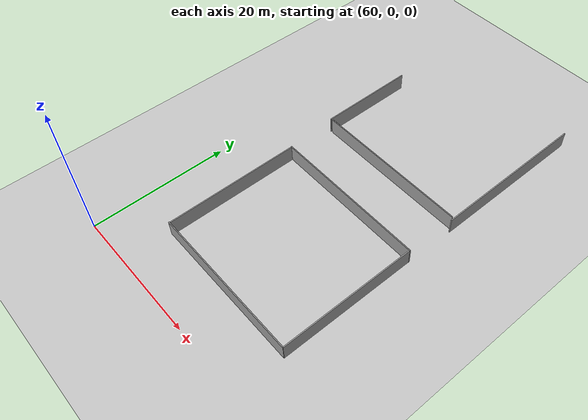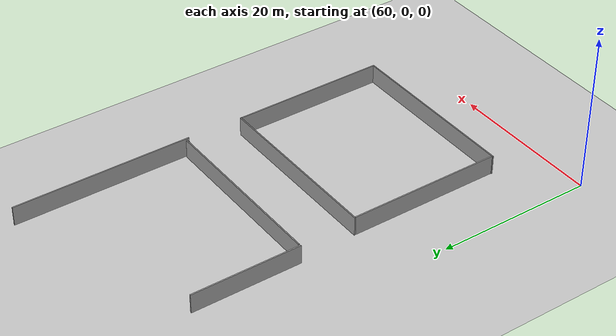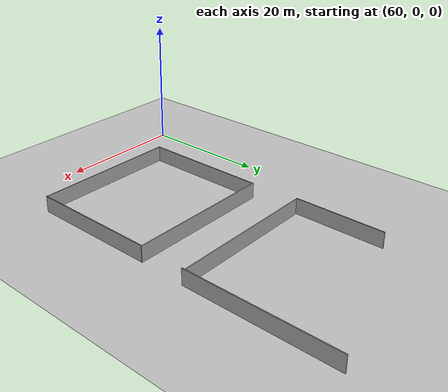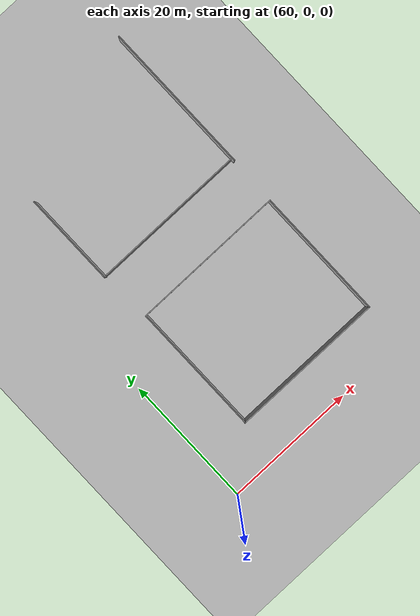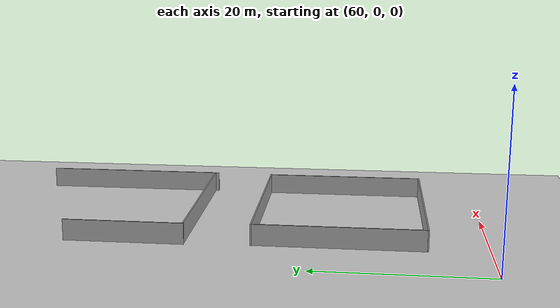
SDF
<sdf version="1.6">
 <world name="default">
  <model name="ground_plane">
   <static>1</static>
   <link name="link">
    <collision name="collision">
     <geometry><plane><normal>0 0 1</normal><size>100 100</size></plane></geometry>
     <surface>
      <contact><collide_bitmask>65535</collide_bitmask></contact>
      <friction><ode><mu>100</mu><mu2>50</mu2></ode></friction>
     </surface>
    </collision>
    <visual name="visual">
     <cast_shadows>0</cast_shadows>
     <geometry><plane><normal>0 0 1</normal><size>100 100</size></plane></geometry>
     <material>
      <script><uri>file://media/materials/scripts/gazebo.material</uri><name>Gazebo/Grey</name></script>
     </material>
    </visual>
   </link>
  </model>
  <model name="en_uzun_duvar2_clone_1_clone_clone_clone_7">
   <link name="Wall_2">
    <pose>10.2656 7.53235 0 0 -0 0</pose>
    <inertial>
     <inertia><ixx>0</ixx><ixy>0</ixy><ixz>0</ixz><iyy>0</iyy><iyz>0</iyz><izz>0</izz></inertia>
     <mass>0</mass>
    </inertial>
    <visual name="Wall_2_Visual">
     <pose>0 0 1.25 0 -0 0</pose>
     <geometry><box><size>19.779 0.15 2.5</size></box></geometry>
     <material>
      <script><uri>file://media/materials/scripts/gazebo.material</uri><name>Gazebo/Grey</name></script>
      <ambient>1 1 1 1</ambient>
     </material>
     <meta><layer>0</layer></meta>
    </visual>
    <collision name="Wall_2_Collision">
     <pose>0 0 1.25 0 -0 0</pose>
     <geometry><box><size>19.779 0.15 2.5</size></box></geometry>
     <surface>
      <friction>
       <ode><mu>1</mu><mu2>1</mu2><fdir1>0 0 0</fdir1><slip1>0</slip1><slip2>0</slip2></ode>
       <torsional>
        <coefficient>1</coefficient>
        <patch_radius>0</patch_radius>
        <surface_radius>0</surface_radius>
        <use_patch_radius>1</use_patch_radius>
        <ode><slip>0</slip></ode>
       </torsional>
      </friction>
      <bounce><restitution_coefficient>0</restitution_coefficient><threshold>1e+06</threshold></bounce>
      <contact>
       <collide_without_contact>0</collide_without_contact>
       <collide_without_contact_bitmask>1</collide_without_contact_bitmask>
       <collide_bitmask>1</collide_bitmask>
       <ode>
        <soft_cfm>0</soft_cfm>
        <soft_erp>0.2</soft_erp>
        <kp>1e+13</kp>
        <kd>1</kd>
        <max_vel>0.01</max_vel>
        <min_depth>0</min_depth>
       </ode>
       <bullet>
        <split_impulse>1</split_impulse>
        <split_impulse_penetration_threshold>-0.01</split_impulse_penetration_threshold>
        <soft_cfm>0</soft_cfm>
        <soft_erp>0.2</soft_erp>
        <kp>1e+13</kp>
        <kd>1</kd>
       </bullet>
      </contact>
     </surface>
    </collision>
   </link>
   <static>1</static>
   <pose>75.3393 6.51621 0 0 -0 1.57059</pose>
  </model>
  <model name="en_uzun_duvar2_clone_1_clone_clone_clone_9">
   <link name="Wall_2">
    <pose>10.2656 7.53235 0 0 -0 0</pose>
    <inertial>
     <inertia><ixx>0</ixx><ixy>0</ixy><ixz>0</ixz><iyy>0</iyy><iyz>0</iyz><izz>0</izz></inertia>
     <mass>0</mass>
    </inertial>
    <visual name="Wall_2_Visual">
     <pose>0 0 1.25 0 -0 0</pose>
     <geometry><box><size>19.779 0.15 2.5</size></box></geometry>
     <material>
      <script><uri>file://media/materials/scripts/gazebo.material</uri><name>Gazebo/Grey</name></script>
      <ambient>1 1 1 1</ambient>
     </material>
     <meta><layer>0</layer></meta>
    </visual>
    <collision name="Wall_2_Collision">
     <pose>0 0 1.25 0 -0 0</pose>
     <geometry><box><size>19.779 0.15 2.5</size></box></geometry>
     <surface>
      <friction>
       <ode><mu>1</mu><mu2>1</mu2><fdir1>0 0 0</fdir1><slip1>0</slip1><slip2>0</slip2></ode>
       <torsional>
        <coefficient>1</coefficient>
        <patch_radius>0</patch_radius>
        <surface_radius>0</surface_radius>
        <use_patch_radius>1</use_patch_radius>
        <ode><slip>0</slip></ode>
       </torsional>
      </friction>
      <bounce><restitution_coefficient>0</restitution_coefficient><threshold>1e+06</threshold></bounce>
      <contact>
       <collide_without_contact>0</collide_without_contact>
       <collide_without_contact_bitmask>1</collide_without_contact_bitmask>
       <collide_bitmask>1</collide_bitmask>
       <ode>
        <soft_cfm>0</soft_cfm>
        <soft_erp>0.2</soft_erp>
        <kp>1e+13</kp>
        <kd>1</kd>
        <max_vel>0.01</max_vel>
        <min_depth>0</min_depth>
       </ode>
       <bullet>
        <split_impulse>1</split_impulse>
        <split_impulse_penetration_threshold>-0.01</split_impulse_penetration_threshold>
        <soft_cfm>0</soft_cfm>
        <soft_erp>0.2</soft_erp>
        <kp>1e+13</kp>
        <kd>1</kd>
       </bullet>
      </contact>
     </surface>
    </collision>
   </link>
   <static>1</static>
   <pose>98.3279 6.51977 0 0 -0 1.57059</pose>
  </model>
  <model name="en_uzun_duvar2_clone_1_clone_clone_clone_10_clone_1">
   <link name="Wall_2">
    <pose>10.2656 7.53235 0 0 -0 0</pose>
    <inertial>
     <inertia><ixx>0</ixx><ixy>0</ixy><ixz>0</ixz><iyy>0</iyy><iyz>0</iyz><izz>0</izz></inertia>
     <mass>0</mass>
    </inertial>
    <visual name="Wall_2_Visual">
     <pose>0 0 1.25 0 -0 0</pose>
     <geometry><box><size>23.1013 0.15 2.5</size></box></geometry>
     <material>
      <script><uri>file://media/materials/scripts/gazebo.material</uri><name>Gazebo/Grey</name></script>
      <ambient>1 1 1 1</ambient>
     </material>
     <meta><layer>0</layer></meta>
    </visual>
    <collision name="Wall_2_Collision">
     <pose>0 0 1.25 0 -0 0</pose>
     <geometry><box><size>23.1013 0.15 2.5</size></box></geometry>
     <surface>
      <friction>
       <ode><mu>1</mu><mu2>1</mu2><fdir1>0 0 0</fdir1><slip1>0</slip1><slip2>0</slip2></ode>
       <torsional>
        <coefficient>1</coefficient>
        <patch_radius>0</patch_radius>
        <surface_radius>0</surface_radius>
        <use_patch_radius>1</use_patch_radius>
        <ode><slip>0</slip></ode>
       </torsional>
      </friction>
      <bounce><restitution_coefficient>0</restitution_coefficient><threshold>1e+06</threshold></bounce>
      <contact>
       <collide_without_contact>0</collide_without_contact>
       <collide_without_contact_bitmask>1</collide_without_contact_bitmask>
       <collide_bitmask>1</collide_bitmask>
       <ode>
        <soft_cfm>0</soft_cfm>
        <soft_erp>0.2</soft_erp>
        <kp>1e+13</kp>
        <kd>1</kd>
        <max_vel>0.01</max_vel>
        <min_depth>0</min_depth>
       </ode>
       <bullet>
        <split_impulse>1</split_impulse>
        <split_impulse_penetration_threshold>-0.01</split_impulse_penetration_threshold>
        <soft_cfm>0</soft_cfm>
        <soft_erp>0.2</soft_erp>
        <kp>1e+13</kp>
        <kd>1</kd>
       </bullet>
      </contact>
     </surface>
    </collision>
   </link>
   <static>1</static>
   <pose>98.5301 35.2119 0 0 -0 1.57059</pose>
  </model>
  <model name="en_uzun_duvar2_clone_1_clone_clone_clone_10_clone_3_clone_0">
   <link name="Wall_2">
    <pose>10.2656 7.53235 0 0 -0 0</pose>
    <inertial>
     <inertia><ixx>0</ixx><ixy>0</ixy><ixz>0</ixz><iyy>0</iyy><iyz>0</iyz><izz>0</izz></inertia>
     <mass>0</mass>
    </inertial>
    <visual name="Wall_2_Visual">
     <pose>0 0 1.25 0 -0 0</pose>
     <geometry><box><size>14.1147 0.15 2.5</size></box></geometry>
     <material>
      <script><uri>file://media/materials/scripts/gazebo.material</uri><name>Gazebo/Grey</name></script>
      <ambient>1 1 1 1</ambient>
     </material>
     <meta><layer>0</layer></meta>
    </visual>
    <collision name="Wall_2_Collision">
     <pose>0 0 1.25 0 -0 0</pose>
     <geometry><box><size>14.1147 0.15 2.5</size></box></geometry>
     <surface>
      <friction>
       <ode><mu>1</mu><mu2>1</mu2><fdir1>0 0 0</fdir1><slip1>0</slip1><slip2>0</slip2></ode>
       <torsional>
        <coefficient>1</coefficient>
        <patch_radius>0</patch_radius>
        <surface_radius>0</surface_radius>
        <use_patch_radius>1</use_patch_radius>
        <ode><slip>0</slip></ode>
       </torsional>
      </friction>
      <bounce><restitution_coefficient>0</restitution_coefficient><threshold>1e+06</threshold></bounce>
      <contact>
       <collide_without_contact>0</collide_without_contact>
       <collide_without_contact_bitmask>1</collide_without_contact_bitmask>
       <collide_bitmask>1</collide_bitmask>
       <ode>
        <soft_cfm>0</soft_cfm>
        <soft_erp>0.2</soft_erp>
        <kp>1e+13</kp>
        <kd>1</kd>
        <max_vel>0.01</max_vel>
        <min_depth>0</min_depth>
       </ode>
       <bullet>
        <split_impulse>1</split_impulse>
        <split_impulse_penetration_threshold>-0.01</split_impulse_penetration_threshold>
        <soft_cfm>0</soft_cfm>
        <soft_erp>0.2</soft_erp>
        <kp>1e+13</kp>
        <kd>1</kd>
       </bullet>
      </contact>
     </surface>
    </collision>
   </link>
   <static>1</static>
   <pose>74.8187 31.1317 0 0 -0 1.57059</pose>
  </model>
  <model name="en_uzun_duvar2_clone_1_clone_clone_clone_4_clone_0">
   <link name="Wall_2">
    <pose>10.2656 7.53235 0 0 -0 0</pose>
    <inertial>
     <inertia><ixx>0</ixx><ixy>0</ixy><ixz>0</ixz><iyy>0</iyy><iyz>0</iyz><izz>0</izz></inertia>
     <mass>0</mass>
    </inertial>
    <visual name="Wall_2_Visual">
     <pose>0 0 1.25 0 -0 0</pose>
     <geometry><box><size>23.1907 0.15 2.5</size></box></geometry>
     <material>
      <script><uri>file://media/materials/scripts/gazebo.material</uri><name>Gazebo/Grey</name></script>
      <ambient>1 1 1 1</ambient>
     </material>
     <meta><layer>0</layer></meta>
    </visual>
    <collision name="Wall_2_Collision">
     <pose>0 0 1.25 0 -0 0</pose>
     <geometry><box><size>23.1907 0.15 2.5</size></box></geometry>
     <surface>
      <friction>
       <ode><mu>1</mu><mu2>1</mu2><fdir1>0 0 0</fdir1><slip1>0</slip1><slip2>0</slip2></ode>
       <torsional>
        <coefficient>1</coefficient>
        <patch_radius>0</patch_radius>
        <surface_radius>0</surface_radius>
        <use_patch_radius>1</use_patch_radius>
        <ode><slip>0</slip></ode>
       </torsional>
      </friction>
      <bounce><restitution_coefficient>0</restitution_coefficient><threshold>1e+06</threshold></bounce>
      <contact>
       <collide_without_contact>0</collide_without_contact>
       <collide_without_contact_bitmask>1</collide_without_contact_bitmask>
       <collide_bitmask>1</collide_bitmask>
       <ode>
        <soft_cfm>0</soft_cfm>
        <soft_erp>0.2</soft_erp>
        <kp>1e+13</kp>
        <kd>1</kd>
        <max_vel>0.01</max_vel>
        <min_depth>0</min_depth>
       </ode>
       <bullet>
        <split_impulse>1</split_impulse>
        <split_impulse_penetration_threshold>-0.01</split_impulse_penetration_threshold>
        <soft_cfm>0</soft_cfm>
        <soft_erp>0.2</soft_erp>
        <kp>1e+13</kp>
        <kd>1</kd>
       </bullet>
      </contact>
     </surface>
    </collision>
   </link>
   <static>1</static>
   <pose>89.4142 41.951 0 0 -0 3.14036</pose>
  </model>
  <model name="en_uzun_duvar2_clone_1_clone_clone_clone_4_clone_1">
   <link name="Wall_2">
    <pose>10.2656 7.53235 0 0 -0 0</pose>
    <inertial>
     <inertia><ixx>0</ixx><ixy>0</ixy><ixz>0</ixz><iyy>0</iyy><iyz>0</iyz><izz>0</izz></inertia>
     <mass>0</mass>
    </inertial>
    <visual name="Wall_2_Visual">
     <pose>0 0 1.25 0 -0 0</pose>
     <geometry><box><size>23.1907 0.15 2.5</size></box></geometry>
     <material>
      <script><uri>file://media/materials/scripts/gazebo.material</uri><name>Gazebo/Grey</name></script>
      <ambient>1 1 1 1</ambient>
     </material>
     <meta><layer>0</layer></meta>
    </visual>
    <collision name="Wall_2_Collision">
     <pose>0 0 1.25 0 -0 0</pose>
     <geometry><box><size>23.1907 0.15 2.5</size></box></geometry>
     <surface>
      <friction>
       <ode><mu>1</mu><mu2>1</mu2><fdir1>0 0 0</fdir1><slip1>0</slip1><slip2>0</slip2></ode>
       <torsional>
        <coefficient>1</coefficient>
        <patch_radius>0</patch_radius>
        <surface_radius>0</surface_radius>
        <use_patch_radius>1</use_patch_radius>
        <ode><slip>0</slip></ode>
       </torsional>
      </friction>
      <bounce><restitution_coefficient>0</restitution_coefficient><threshold>1e+06</threshold></bounce>
      <contact>
       <collide_without_contact>0</collide_without_contact>
       <collide_without_contact_bitmask>1</collide_without_contact_bitmask>
       <collide_bitmask>1</collide_bitmask>
       <ode>
        <soft_cfm>0</soft_cfm>
        <soft_erp>0.2</soft_erp>
        <kp>1e+13</kp>
        <kd>1</kd>
        <max_vel>0.01</max_vel>
        <min_depth>0</min_depth>
       </ode>
       <bullet>
        <split_impulse>1</split_impulse>
        <split_impulse_penetration_threshold>-0.01</split_impulse_penetration_threshold>
        <soft_cfm>0</soft_cfm>
        <soft_erp>0.2</soft_erp>
        <kp>1e+13</kp>
        <kd>1</kd>
       </bullet>
      </contact>
     </surface>
    </collision>
   </link>
   <static>1</static>
   <pose>89.5824 34.2624 0 0 -0 3.14036</pose>
  </model>
  <model name="en_uzun_duvar2_clone_1_clone_clone_clone_4_clone_2">
   <link name="Wall_2">
    <pose>10.2656 7.53235 0 0 -0 0</pose>
    <inertial>
     <inertia><ixx>0</ixx><ixy>0</ixy><ixz>0</ixz><iyy>0</iyy><iyz>0</iyz><izz>0</izz></inertia>
     <mass>0</mass>
    </inertial>
    <visual name="Wall_2_Visual">
     <pose>0 0 1.25 0 -0 0</pose>
     <geometry><box><size>23.1907 0.15 2.5</size></box></geometry>
     <material>
      <script><uri>file://media/materials/scripts/gazebo.material</uri><name>Gazebo/Grey</name></script>
      <ambient>1 1 1 1</ambient>
     </material>
     <meta><layer>0</layer></meta>
    </visual>
    <collision name="Wall_2_Collision">
     <pose>0 0 1.25 0 -0 0</pose>
     <geometry><box><size>23.1907 0.15 2.5</size></box></geometry>
     <surface>
      <friction>
       <ode><mu>1</mu><mu2>1</mu2><fdir1>0 0 0</fdir1><slip1>0</slip1><slip2>0</slip2></ode>
       <torsional>
        <coefficient>1</coefficient>
        <patch_radius>0</patch_radius>
        <surface_radius>0</surface_radius>
        <use_patch_radius>1</use_patch_radius>
        <ode><slip>0</slip></ode>
       </torsional>
      </friction>
      <bounce><restitution_coefficient>0</restitution_coefficient><threshold>1e+06</threshold></bounce>
      <contact>
       <collide_without_contact>0</collide_without_contact>
       <collide_without_contact_bitmask>1</collide_without_contact_bitmask>
       <collide_bitmask>1</collide_bitmask>
       <ode>
        <soft_cfm>0</soft_cfm>
        <soft_erp>0.2</soft_erp>
        <kp>1e+13</kp>
        <kd>1</kd>
        <max_vel>0.01</max_vel>
        <min_depth>0</min_depth>
       </ode>
       <bullet>
        <split_impulse>1</split_impulse>
        <split_impulse_penetration_threshold>-0.01</split_impulse_penetration_threshold>
        <soft_cfm>0</soft_cfm>
        <soft_erp>0.2</soft_erp>
        <kp>1e+13</kp>
        <kd>1</kd>
       </bullet>
      </contact>
     </surface>
    </collision>
   </link>
   <static>1</static>
   <pose>89.5249 14.4687 0 0 -0 3.14036</pose>
  </model>
 </world>
</sdf>
